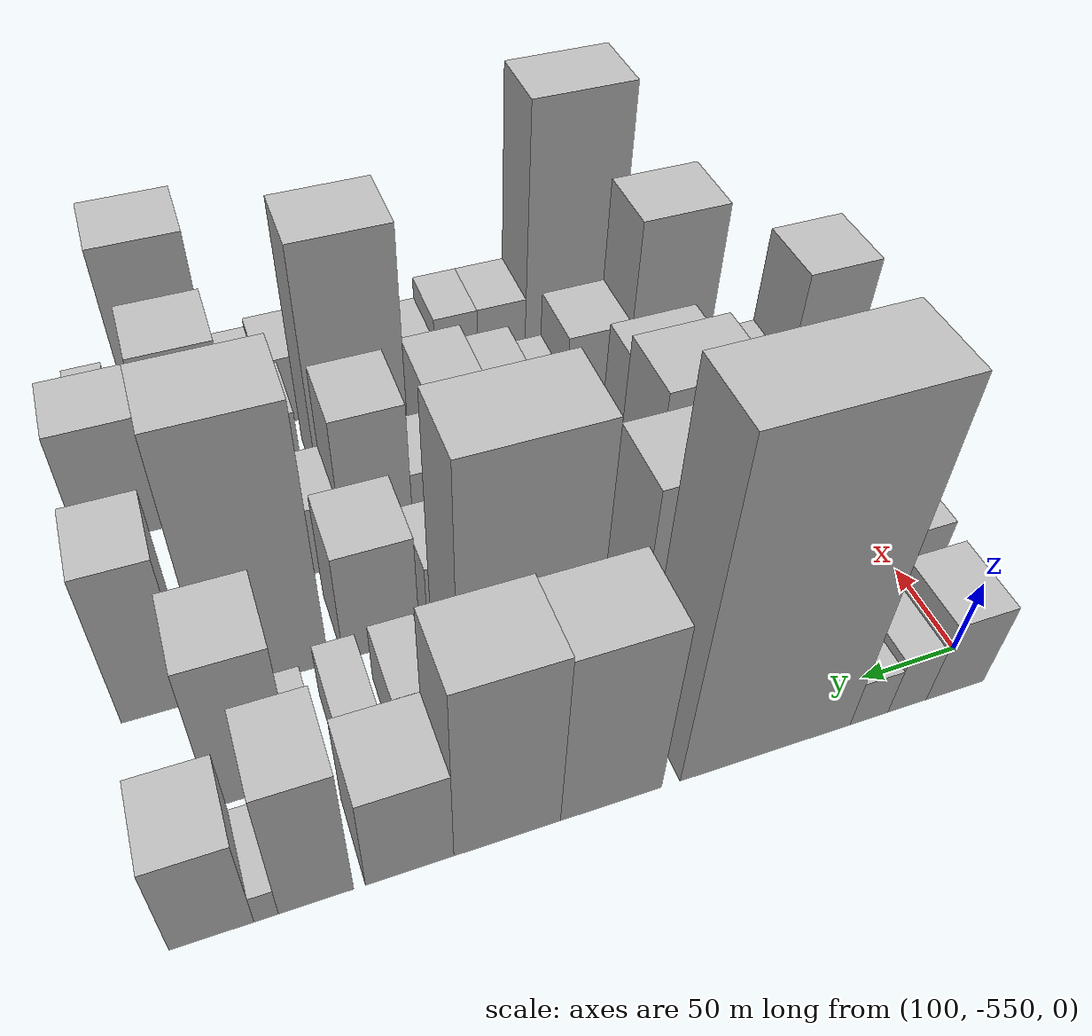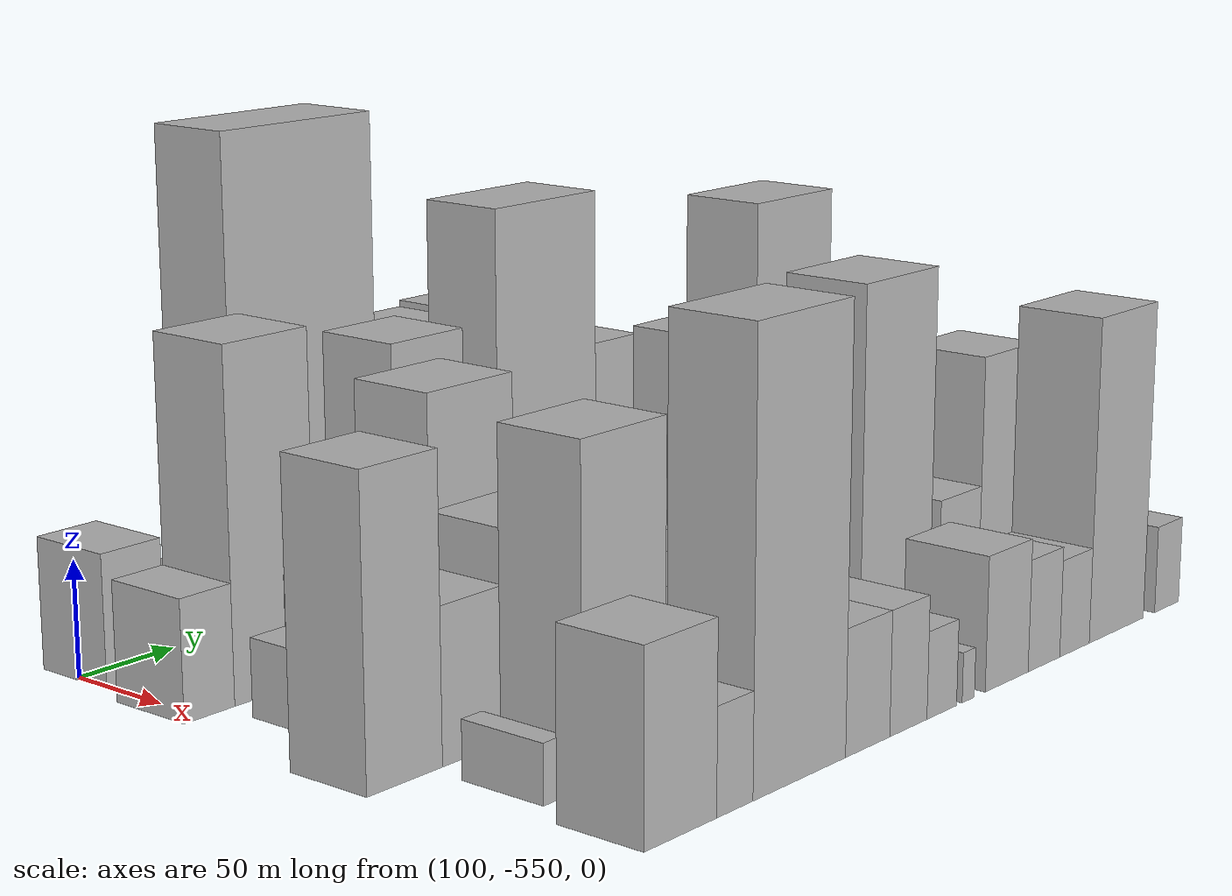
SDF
<sdf version="1.6">
 <world name="default">
  <model name="building_10">
   <static>1</static>
   <pose>100.0000 -536.9174 0 0.000000 0.000000 0.000000</pose>
   <link name="link">
    <pose>0 0 28.50 0 0 0</pose>
    <collision name="collision"><geometry><box><size>40.0000 30.9762 57.0000</size></box></geometry></collision>
    <visual name="visual">
     <cast_shadows>0</cast_shadows>
     <geometry><box><size>40.0000 30.9762 57.0000</size></box></geometry>
     <material>
      <script>
       <uri>model://HANNAS_wall/materials/scripts</uri>
       <uri>model://HANNAS_wall/materials/textures</uri>
       <name>vrc/HANNAS_wall</name>
      </script>
     </material>
    </visual>
   </link>
  </model>
  <model name="building_11">
   <static>1</static>
   <pose>100.0000 -511.2003 0 0.000000 0.000000 0.000000</pose>
   <link name="link">
    <pose>0 0 19.50 0 0 0</pose>
    <collision name="collision"><geometry><box><size>40.0000 20.4582 39.0000</size></box></geometry></collision>
    <visual name="visual">
     <cast_shadows>0</cast_shadows>
     <geometry><box><size>40.0000 20.4582 39.0000</size></box></geometry>
     <material>
      <script>
       <uri>model://HANNAS_wall/materials/scripts</uri>
       <uri>model://HANNAS_wall/materials/textures</uri>
       <name>vrc/HANNAS_wall</name>
      </script>
     </material>
    </visual>
   </link>
  </model>
  <model name="building_12">
   <static>1</static>
   <pose>100.0000 -491.1092 0 0.000000 0.000000 0.000000</pose>
   <link name="link">
    <pose>0 0 16.50 0 0 0</pose>
    <collision name="collision"><geometry><box><size>40.0000 19.7239 33.0000</size></box></geometry></collision>
    <visual name="visual">
     <cast_shadows>0</cast_shadows>
     <geometry><box><size>40.0000 19.7239 33.0000</size></box></geometry>
     <material>
      <script>
       <uri>model://HANNAS_wall/materials/scripts</uri>
       <uri>model://HANNAS_wall/materials/textures</uri>
       <name>vrc/HANNAS_wall</name>
      </script>
     </material>
    </visual>
   </link>
  </model>
  <model name="building_13">
   <static>1</static>
   <pose>100.0000 -438.6262 0 0.000000 0.000000 0.000000</pose>
   <link name="link">
    <pose>0 0 109.50 0 0 0</pose>
    <collision name="collision"><geometry><box><size>40.0000 85.2422 219.0000</size></box></geometry></collision>
    <visual name="visual">
     <cast_shadows>0</cast_shadows>
     <geometry><box><size>40.0000 85.2422 219.0000</size></box></geometry>
     <material>
      <script>
       <uri>model://HANNAS_wall/materials/scripts</uri>
       <uri>model://HANNAS_wall/materials/textures</uri>
       <name>vrc/HANNAS_wall</name>
      </script>
     </material>
    </visual>
   </link>
  </model>
  <model name="building_14">
   <static>1</static>
   <pose>100.0000 -363.2224 0 0.000000 0.000000 0.000000</pose>
   <link name="link">
    <pose>0 0 60.00 0 0 0</pose>
    <collision name="collision"><geometry><box><size>40.0000 47.5653 120.0000</size></box></geometry></collision>
    <visual name="visual">
     <cast_shadows>0</cast_shadows>
     <geometry><box><size>40.0000 47.5653 120.0000</size></box></geometry>
     <material>
      <script>
       <uri>model://HANNAS_wall/materials/scripts</uri>
       <uri>model://HANNAS_wall/materials/textures</uri>
       <name>vrc/HANNAS_wall</name>
      </script>
     </material>
    </visual>
   </link>
  </model>
  <model name="building_15">
   <static>1</static>
   <pose>100.0000 -315.4356 0 0.000000 0.000000 0.000000</pose>
   <link name="link">
    <pose>0 0 61.50 0 0 0</pose>
    <collision name="collision"><geometry><box><size>40.0000 48.0083 123.0000</size></box></geometry></collision>
    <visual name="visual">
     <cast_shadows>0</cast_shadows>
     <geometry><box><size>40.0000 48.0083 123.0000</size></box></geometry>
     <material>
      <script>
       <uri>model://HANNAS_wall/materials/scripts</uri>
       <uri>model://HANNAS_wall/materials/textures</uri>
       <name>vrc/HANNAS_wall</name>
      </script>
     </material>
    </visual>
   </link>
  </model>
  <model name="building_16">
   <static>1</static>
   <pose>100.0000 -272.2559 0 0.000000 0.000000 0.000000</pose>
   <link name="link">
    <pose>0 0 33.00 0 0 0</pose>
    <collision name="collision"><geometry><box><size>40.0000 38.3510 66.0000</size></box></geometry></collision>
    <visual name="visual">
     <cast_shadows>0</cast_shadows>
     <geometry><box><size>40.0000 38.3510 66.0000</size></box></geometry>
     <material>
      <script>
       <uri>model://HANNAS_wall/materials/scripts</uri>
       <uri>model://HANNAS_wall/materials/textures</uri>
       <name>vrc/HANNAS_wall</name>
      </script>
     </material>
    </visual>
   </link>
  </model>
  <model name="building_17">
   <static>1</static>
   <pose>100.0000 -232.3339 0 0.000000 0.000000 0.000000</pose>
   <link name="link">
    <pose>0 0 46.50 0 0 0</pose>
    <collision name="collision"><geometry><box><size>40.0000 31.4930 93.0000</size></box></geometry></collision>
    <visual name="visual">
     <cast_shadows>0</cast_shadows>
     <geometry><box><size>40.0000 31.4930 93.0000</size></box></geometry>
     <material>
      <script>
       <uri>model://HANNAS_wall/materials/scripts</uri>
       <uri>model://HANNAS_wall/materials/textures</uri>
       <name>vrc/HANNAS_wall</name>
      </script>
     </material>
    </visual>
   </link>
  </model>
  <model name="building_18">
   <static>1</static>
   <pose>100.0000 -211.5624 0 0.000000 0.000000 0.000000</pose>
   <link name="link">
    <pose>0 0 10.50 0 0 0</pose>
    <collision name="collision"><geometry><box><size>40.0000 10.0500 21.0000</size></box></geometry></collision>
    <visual name="visual">
     <cast_shadows>0</cast_shadows>
     <geometry><box><size>40.0000 10.0500 21.0000</size></box></geometry>
     <material>
      <script>
       <uri>model://HANNAS_wall/materials/scripts</uri>
       <uri>model://HANNAS_wall/materials/textures</uri>
       <name>vrc/HANNAS_wall</name>
      </script>
     </material>
    </visual>
   </link>
  </model>
  <model name="building_19">
   <static>1</static>
   <pose>100.0000 -189.4465 0 0.000000 0.000000 0.000000</pose>
   <link name="link">
    <pose>0 0 33.00 0 0 0</pose>
    <collision name="collision"><geometry><box><size>40.0000 34.1818 66.0000</size></box></geometry></collision>
    <visual name="visual">
     <cast_shadows>0</cast_shadows>
     <geometry><box><size>40.0000 34.1818 66.0000</size></box></geometry>
     <material>
      <script>
       <uri>model://HANNAS_wall/materials/scripts</uri>
       <uri>model://HANNAS_wall/materials/textures</uri>
       <name>vrc/HANNAS_wall</name>
      </script>
     </material>
    </visual>
   </link>
  </model>
  <model name="building_60">
   <static>1</static>
   <pose>155.0000 -546.4529 0 0.000000 0.000000 0.000000</pose>
   <link name="link">
    <pose>0 0 25.50 0 0 0</pose>
    <collision name="collision"><geometry><box><size>40.0000 26.4667 51.0000</size></box></geometry></collision>
    <visual name="visual">
     <cast_shadows>0</cast_shadows>
     <geometry><box><size>40.0000 26.4667 51.0000</size></box></geometry>
     <material>
      <script>
       <uri>model://HANNAS_wall/materials/scripts</uri>
       <uri>model://HANNAS_wall/materials/textures</uri>
       <name>vrc/HANNAS_wall</name>
      </script>
     </material>
    </visual>
   </link>
  </model>
  <model name="building_61">
   <static>1</static>
   <pose>155.0000 -510.8375 0 0.000000 0.000000 0.000000</pose>
   <link name="link">
    <pose>0 0 73.50 0 0 0</pose>
    <collision name="collision"><geometry><box><size>40.0000 44.7640 147.0000</size></box></geometry></collision>
    <visual name="visual">
     <cast_shadows>0</cast_shadows>
     <geometry><box><size>40.0000 44.7640 147.0000</size></box></geometry>
     <material>
      <script>
       <uri>model://HANNAS_wall/materials/scripts</uri>
       <uri>model://HANNAS_wall/materials/textures</uri>
       <name>vrc/HANNAS_wall</name>
      </script>
     </material>
    </visual>
   </link>
  </model>
  <model name="building_62">
   <static>1</static>
   <pose>155.0000 -466.9469 0 0.000000 0.000000 0.000000</pose>
   <link name="link">
    <pose>0 0 37.50 0 0 0</pose>
    <collision name="collision"><geometry><box><size>40.0000 43.0172 75.0000</size></box></geometry></collision>
    <visual name="visual">
     <cast_shadows>0</cast_shadows>
     <geometry><box><size>40.0000 43.0172 75.0000</size></box></geometry>
     <material>
      <script>
       <uri>model://HANNAS_wall/materials/scripts</uri>
       <uri>model://HANNAS_wall/materials/textures</uri>
       <name>vrc/HANNAS_wall</name>
      </script>
     </material>
    </visual>
   </link>
  </model>
  <model name="building_63">
   <static>1</static>
   <pose>155.0000 -419.9673 0 0.000000 0.000000 0.000000</pose>
   <link name="link">
    <pose>0 0 66.00 0 0 0</pose>
    <collision name="collision"><geometry><box><size>40.0000 42.9420 132.0000</size></box></geometry></collision>
    <visual name="visual">
     <cast_shadows>0</cast_shadows>
     <geometry><box><size>40.0000 42.9420 132.0000</size></box></geometry>
     <material>
      <script>
       <uri>model://HANNAS_wall/materials/scripts</uri>
       <uri>model://HANNAS_wall/materials/textures</uri>
       <name>vrc/HANNAS_wall</name>
      </script>
     </material>
    </visual>
   </link>
  </model>
  <model name="building_64">
   <static>1</static>
   <pose>155.0000 -387.9159 0 0.000000 0.000000 0.000000</pose>
   <link name="link">
    <pose>0 0 21.00 0 0 0</pose>
    <collision name="collision"><geometry><box><size>40.0000 21.1607 42.0000</size></box></geometry></collision>
    <visual name="visual">
     <cast_shadows>0</cast_shadows>
     <geometry><box><size>40.0000 21.1607 42.0000</size></box></geometry>
     <material>
      <script>
       <uri>model://HANNAS_wall/materials/scripts</uri>
       <uri>model://HANNAS_wall/materials/textures</uri>
       <name>vrc/HANNAS_wall</name>
      </script>
     </material>
    </visual>
   </link>
  </model>
  <model name="building_65">
   <static>1</static>
   <pose>155.0000 -344.6636 0 0.000000 0.000000 0.000000</pose>
   <link name="link">
    <pose>0 0 90.00 0 0 0</pose>
    <collision name="collision"><geometry><box><size>40.0000 65.3439 180.0000</size></box></geometry></collision>
    <visual name="visual">
     <cast_shadows>0</cast_shadows>
     <geometry><box><size>40.0000 65.3439 180.0000</size></box></geometry>
     <material>
      <script>
       <uri>model://HANNAS_wall/materials/scripts</uri>
       <uri>model://HANNAS_wall/materials/textures</uri>
       <name>vrc/HANNAS_wall</name>
      </script>
     </material>
    </visual>
   </link>
  </model>
  <model name="building_66">
   <static>1</static>
   <pose>155.0000 -293.2147 0 0.000000 0.000000 0.000000</pose>
   <link name="link">
    <pose>0 0 21.00 0 0 0</pose>
    <collision name="collision"><geometry><box><size>40.0000 21.5539 42.0000</size></box></geometry></collision>
    <visual name="visual">
     <cast_shadows>0</cast_shadows>
     <geometry><box><size>40.0000 21.5539 42.0000</size></box></geometry>
     <material>
      <script>
       <uri>model://HANNAS_wall/materials/scripts</uri>
       <uri>model://HANNAS_wall/materials/textures</uri>
       <name>vrc/HANNAS_wall</name>
      </script>
     </material>
    </visual>
   </link>
  </model>
  <model name="building_67">
   <static>1</static>
   <pose>155.0000 -266.6001 0 0.000000 0.000000 0.000000</pose>
   <link name="link">
    <pose>0 0 19.50 0 0 0</pose>
    <collision name="collision"><geometry><box><size>40.0000 19.6755 39.0000</size></box></geometry></collision>
    <visual name="visual">
     <cast_shadows>0</cast_shadows>
     <geometry><box><size>40.0000 19.6755 39.0000</size></box></geometry>
     <material>
      <script>
       <uri>model://HANNAS_wall/materials/scripts</uri>
       <uri>model://HANNAS_wall/materials/textures</uri>
       <name>vrc/HANNAS_wall</name>
      </script>
     </material>
    </visual>
   </link>
  </model>
  <model name="building_68">
   <static>1</static>
   <pose>155.0000 -243.4359 0 0.000000 0.000000 0.000000</pose>
   <link name="link">
    <pose>0 0 13.50 0 0 0</pose>
    <collision name="collision"><geometry><box><size>40.0000 12.6530 27.0000</size></box></geometry></collision>
    <visual name="visual">
     <cast_shadows>0</cast_shadows>
     <geometry><box><size>40.0000 12.6530 27.0000</size></box></geometry>
     <material>
      <script>
       <uri>model://HANNAS_wall/materials/scripts</uri>
       <uri>model://HANNAS_wall/materials/textures</uri>
       <name>vrc/HANNAS_wall</name>
      </script>
     </material>
    </visual>
   </link>
  </model>
  <model name="building_69">
   <static>1</static>
   <pose>155.0000 -218.3014 0 0.000000 0.000000 0.000000</pose>
   <link name="link">
    <pose>0 0 51.00 0 0 0</pose>
    <collision name="collision"><geometry><box><size>40.0000 37.6159 102.0000</size></box></geometry></collision>
    <visual name="visual">
     <cast_shadows>0</cast_shadows>
     <geometry><box><size>40.0000 37.6159 102.0000</size></box></geometry>
     <material>
      <script>
       <uri>model://HANNAS_wall/materials/scripts</uri>
       <uri>model://HANNAS_wall/materials/textures</uri>
       <name>vrc/HANNAS_wall</name>
      </script>
     </material>
    </visual>
   </link>
  </model>
  <model name="building_111">
   <static>1</static>
   <pose>210.0000 -528.1250 0 0.000000 0.000000 0.000000</pose>
   <link name="link">
    <pose>0 0 16.50 0 0 0</pose>
    <collision name="collision"><geometry><box><size>40.0000 18.6933 33.0000</size></box></geometry></collision>
    <visual name="visual">
     <cast_shadows>0</cast_shadows>
     <geometry><box><size>40.0000 18.6933 33.0000</size></box></geometry>
     <material>
      <script>
       <uri>model://HANNAS_wall/materials/scripts</uri>
       <uri>model://HANNAS_wall/materials/textures</uri>
       <name>vrc/HANNAS_wall</name>
      </script>
     </material>
    </visual>
   </link>
  </model>
  <model name="building_112">
   <static>1</static>
   <pose>210.0000 -504.7287 0 0.000000 0.000000 0.000000</pose>
   <link name="link">
    <pose>0 0 27.00 0 0 0</pose>
    <collision name="collision"><geometry><box><size>40.0000 28.0993 54.0000</size></box></geometry></collision>
    <visual name="visual">
     <cast_shadows>0</cast_shadows>
     <geometry><box><size>40.0000 28.0993 54.0000</size></box></geometry>
     <material>
      <script>
       <uri>model://HANNAS_wall/materials/scripts</uri>
       <uri>model://HANNAS_wall/materials/textures</uri>
       <name>vrc/HANNAS_wall</name>
      </script>
     </material>
    </visual>
   </link>
  </model>
  <model name="building_113">
   <static>1</static>
   <pose>210.0000 -482.1570 0 0.000000 0.000000 0.000000</pose>
   <link name="link">
    <pose>0 0 10.50 0 0 0</pose>
    <collision name="collision"><geometry><box><size>40.0000 9.0439 21.0000</size></box></geometry></collision>
    <visual name="visual">
     <cast_shadows>0</cast_shadows>
     <geometry><box><size>40.0000 9.0439 21.0000</size></box></geometry>
     <material>
      <script>
       <uri>model://HANNAS_wall/materials/scripts</uri>
       <uri>model://HANNAS_wall/materials/textures</uri>
       <name>vrc/HANNAS_wall</name>
      </script>
     </material>
    </visual>
   </link>
  </model>
  <model name="building_114">
   <static>1</static>
   <pose>210.0000 -452.8979 0 0.000000 0.000000 0.000000</pose>
   <link name="link">
    <pose>0 0 63.00 0 0 0</pose>
    <collision name="collision"><geometry><box><size>40.0000 49.4742 126.0000</size></box></geometry></collision>
    <visual name="visual">
     <cast_shadows>0</cast_shadows>
     <geometry><box><size>40.0000 49.4742 126.0000</size></box></geometry>
     <material>
      <script>
       <uri>model://HANNAS_wall/materials/scripts</uri>
       <uri>model://HANNAS_wall/materials/textures</uri>
       <name>vrc/HANNAS_wall</name>
      </script>
     </material>
    </visual>
   </link>
  </model>
  <model name="building_115">
   <static>1</static>
   <pose>210.0000 -404.6785 0 0.000000 0.000000 0.000000</pose>
   <link name="link">
    <pose>0 0 33.00 0 0 0</pose>
    <collision name="collision"><geometry><box><size>40.0000 36.9648 66.0000</size></box></geometry></collision>
    <visual name="visual">
     <cast_shadows>0</cast_shadows>
     <geometry><box><size>40.0000 36.9648 66.0000</size></box></geometry>
     <material>
      <script>
       <uri>model://HANNAS_wall/materials/scripts</uri>
       <uri>model://HANNAS_wall/materials/textures</uri>
       <name>vrc/HANNAS_wall</name>
      </script>
     </material>
    </visual>
   </link>
  </model>
  <model name="building_116">
   <static>1</static>
   <pose>210.0000 -361.6342 0 0.000000 0.000000 0.000000</pose>
   <link name="link">
    <pose>0 0 40.50 0 0 0</pose>
    <collision name="collision"><geometry><box><size>40.0000 41.1238 81.0000</size></box></geometry></collision>
    <visual name="visual">
     <cast_shadows>0</cast_shadows>
     <geometry><box><size>40.0000 41.1238 81.0000</size></box></geometry>
     <material>
      <script>
       <uri>model://HANNAS_wall/materials/scripts</uri>
       <uri>model://HANNAS_wall/materials/textures</uri>
       <name>vrc/HANNAS_wall</name>
      </script>
     </material>
    </visual>
   </link>
  </model>
  <model name="building_117">
   <static>1</static>
   <pose>210.0000 -327.6168 0 0.000000 0.000000 0.000000</pose>
   <link name="link">
    <pose>0 0 25.50 0 0 0</pose>
    <collision name="collision"><geometry><box><size>40.0000 26.9108 51.0000</size></box></geometry></collision>
    <visual name="visual">
     <cast_shadows>0</cast_shadows>
     <geometry><box><size>40.0000 26.9108 51.0000</size></box></geometry>
     <material>
      <script>
       <uri>model://HANNAS_wall/materials/scripts</uri>
       <uri>model://HANNAS_wall/materials/textures</uri>
       <name>vrc/HANNAS_wall</name>
      </script>
     </material>
    </visual>
   </link>
  </model>
  <model name="building_118">
   <static>1</static>
   <pose>210.0000 -291.1790 0 0.000000 0.000000 0.000000</pose>
   <link name="link">
    <pose>0 0 37.50 0 0 0</pose>
    <collision name="collision"><geometry><box><size>40.0000 37.9648 75.0000</size></box></geometry></collision>
    <visual name="visual">
     <cast_shadows>0</cast_shadows>
     <geometry><box><size>40.0000 37.9648 75.0000</size></box></geometry>
     <material>
      <script>
       <uri>model://HANNAS_wall/materials/scripts</uri>
       <uri>model://HANNAS_wall/materials/textures</uri>
       <name>vrc/HANNAS_wall</name>
      </script>
     </material>
    </visual>
   </link>
  </model>
  <model name="building_119">
   <static>1</static>
   <pose>210.0000 -237.3289 0 0.000000 0.000000 0.000000</pose>
   <link name="link">
    <pose>0 0 87.00 0 0 0</pose>
    <collision name="collision"><geometry><box><size>40.0000 55.7355 174.0000</size></box></geometry></collision>
    <visual name="visual">
     <cast_shadows>0</cast_shadows>
     <geometry><box><size>40.0000 55.7355 174.0000</size></box></geometry>
     <material>
      <script>
       <uri>model://HANNAS_wall/materials/scripts</uri>
       <uri>model://HANNAS_wall/materials/textures</uri>
       <name>vrc/HANNAS_wall</name>
      </script>
     </material>
    </visual>
   </link>
  </model>
  <model name="building_120">
   <static>1</static>
   <pose>210.0000 -184.7166 0 0.000000 0.000000 0.000000</pose>
   <link name="link">
    <pose>0 0 52.50 0 0 0</pose>
    <collision name="collision"><geometry><box><size>40.0000 33.4890 105.0000</size></box></geometry></collision>
    <visual name="visual">
     <cast_shadows>0</cast_shadows>
     <geometry><box><size>40.0000 33.4890 105.0000</size></box></geometry>
     <material>
      <script>
       <uri>model://HANNAS_wall/materials/scripts</uri>
       <uri>model://HANNAS_wall/materials/textures</uri>
       <name>vrc/HANNAS_wall</name>
      </script>
     </material>
    </visual>
   </link>
  </model>
  <model name="building_163">
   <static>1</static>
   <pose>265.0000 -549.4893 0 0.000000 0.000000 0.000000</pose>
   <link name="link">
    <pose>0 0 61.50 0 0 0</pose>
    <collision name="collision"><geometry><box><size>40.0000 39.9293 123.0000</size></box></geometry></collision>
    <visual name="visual">
     <cast_shadows>0</cast_shadows>
     <geometry><box><size>40.0000 39.9293 123.0000</size></box></geometry>
     <material>
      <script>
       <uri>model://HANNAS_wall/materials/scripts</uri>
       <uri>model://HANNAS_wall/materials/textures</uri>
       <name>vrc/HANNAS_wall</name>
      </script>
     </material>
    </visual>
   </link>
  </model>
  <model name="building_164">
   <static>1</static>
   <pose>265.0000 -512.4568 0 0.000000 0.000000 0.000000</pose>
   <link name="link">
    <pose>0 0 31.50 0 0 0</pose>
    <collision name="collision"><geometry><box><size>40.0000 34.1358 63.0000</size></box></geometry></collision>
    <visual name="visual">
     <cast_shadows>0</cast_shadows>
     <geometry><box><size>40.0000 34.1358 63.0000</size></box></geometry>
     <material>
      <script>
       <uri>model://HANNAS_wall/materials/scripts</uri>
       <uri>model://HANNAS_wall/materials/textures</uri>
       <name>vrc/HANNAS_wall</name>
      </script>
     </material>
    </visual>
   </link>
  </model>
  <model name="building_165">
   <static>1</static>
   <pose>265.0000 -468.3640 0 0.000000 0.000000 0.000000</pose>
   <link name="link">
    <pose>0 0 42.00 0 0 0</pose>
    <collision name="collision"><geometry><box><size>40.0000 48.0498 84.0000</size></box></geometry></collision>
    <visual name="visual">
     <cast_shadows>0</cast_shadows>
     <geometry><box><size>40.0000 48.0498 84.0000</size></box></geometry>
     <material>
      <script>
       <uri>model://HANNAS_wall/materials/scripts</uri>
       <uri>model://HANNAS_wall/materials/textures</uri>
       <name>vrc/HANNAS_wall</name>
      </script>
     </material>
    </visual>
   </link>
  </model>
  <model name="building_166">
   <static>1</static>
   <pose>265.0000 -435.1723 0 0.000000 0.000000 0.000000</pose>
   <link name="link">
    <pose>0 0 16.50 0 0 0</pose>
    <collision name="collision"><geometry><box><size>40.0000 18.3336 33.0000</size></box></geometry></collision>
    <visual name="visual">
     <cast_shadows>0</cast_shadows>
     <geometry><box><size>40.0000 18.3336 33.0000</size></box></geometry>
     <material>
      <script>
       <uri>model://HANNAS_wall/materials/scripts</uri>
       <uri>model://HANNAS_wall/materials/textures</uri>
       <name>vrc/HANNAS_wall</name>
      </script>
     </material>
    </visual>
   </link>
  </model>
  <model name="building_167">
   <static>1</static>
   <pose>265.0000 -407.9453 0 0.000000 0.000000 0.000000</pose>
   <link name="link">
    <pose>0 0 31.50 0 0 0</pose>
    <collision name="collision"><geometry><box><size>40.0000 36.1204 63.0000</size></box></geometry></collision>
    <visual name="visual">
     <cast_shadows>0</cast_shadows>
     <geometry><box><size>40.0000 36.1204 63.0000</size></box></geometry>
     <material>
      <script>
       <uri>model://HANNAS_wall/materials/scripts</uri>
       <uri>model://HANNAS_wall/materials/textures</uri>
       <name>vrc/HANNAS_wall</name>
      </script>
     </material>
    </visual>
   </link>
  </model>
  <model name="building_168">
   <static>1</static>
   <pose>265.0000 -370.6185 0 0.000000 0.000000 0.000000</pose>
   <link name="link">
    <pose>0 0 34.50 0 0 0</pose>
    <collision name="collision"><geometry><box><size>40.0000 38.5332 69.0000</size></box></geometry></collision>
    <visual name="visual">
     <cast_shadows>0</cast_shadows>
     <geometry><box><size>40.0000 38.5332 69.0000</size></box></geometry>
     <material>
      <script>
       <uri>model://HANNAS_wall/materials/scripts</uri>
       <uri>model://HANNAS_wall/materials/textures</uri>
       <name>vrc/HANNAS_wall</name>
      </script>
     </material>
    </visual>
   </link>
  </model>
  <model name="building_169">
   <static>1</static>
   <pose>265.0000 -337.6961 0 0.000000 0.000000 0.000000</pose>
   <link name="link">
    <pose>0 0 27.00 0 0 0</pose>
    <collision name="collision"><geometry><box><size>40.0000 27.3116 54.0000</size></box></geometry></collision>
    <visual name="visual">
     <cast_shadows>0</cast_shadows>
     <geometry><box><size>40.0000 27.3116 54.0000</size></box></geometry>
     <material>
      <script>
       <uri>model://HANNAS_wall/materials/scripts</uri>
       <uri>model://HANNAS_wall/materials/textures</uri>
       <name>vrc/HANNAS_wall</name>
      </script>
     </material>
    </visual>
   </link>
  </model>
  <model name="building_170">
   <static>1</static>
   <pose>265.0000 -305.6561 0 0.000000 0.000000 0.000000</pose>
   <link name="link">
    <pose>0 0 51.00 0 0 0</pose>
    <collision name="collision"><geometry><box><size>40.0000 36.7684 102.0000</size></box></geometry></collision>
    <visual name="visual">
     <cast_shadows>0</cast_shadows>
     <geometry><box><size>40.0000 36.7684 102.0000</size></box></geometry>
     <material>
      <script>
       <uri>model://HANNAS_wall/materials/scripts</uri>
       <uri>model://HANNAS_wall/materials/textures</uri>
       <name>vrc/HANNAS_wall</name>
      </script>
     </material>
    </visual>
   </link>
  </model>
  <model name="building_171">
   <static>1</static>
   <pose>265.0000 -273.3332 0 0.000000 0.000000 0.000000</pose>
   <link name="link">
    <pose>0 0 24.00 0 0 0</pose>
    <collision name="collision"><geometry><box><size>40.0000 27.8774 48.0000</size></box></geometry></collision>
    <visual name="visual">
     <cast_shadows>0</cast_shadows>
     <geometry><box><size>40.0000 27.8774 48.0000</size></box></geometry>
     <material>
      <script>
       <uri>model://HANNAS_wall/materials/scripts</uri>
       <uri>model://HANNAS_wall/materials/textures</uri>
       <name>vrc/HANNAS_wall</name>
      </script>
     </material>
    </visual>
   </link>
  </model>
  <model name="building_172">
   <static>1</static>
   <pose>265.0000 -234.2094 0 0.000000 0.000000 0.000000</pose>
   <link name="link">
    <pose>0 0 37.50 0 0 0</pose>
    <collision name="collision"><geometry><box><size>40.0000 42.3704 75.0000</size></box></geometry></collision>
    <visual name="visual">
     <cast_shadows>0</cast_shadows>
     <geometry><box><size>40.0000 42.3704 75.0000</size></box></geometry>
     <material>
      <script>
       <uri>model://HANNAS_wall/materials/scripts</uri>
       <uri>model://HANNAS_wall/materials/textures</uri>
       <name>vrc/HANNAS_wall</name>
      </script>
     </material>
    </visual>
   </link>
  </model>
  <model name="building_217">
   <static>1</static>
   <pose>320.0000 -529.2027 0 0.000000 0.000000 0.000000</pose>
   <link name="link">
    <pose>0 0 12.00 0 0 0</pose>
    <collision name="collision"><geometry><box><size>40.0000 11.2397 24.0000</size></box></geometry></collision>
    <visual name="visual">
     <cast_shadows>0</cast_shadows>
     <geometry><box><size>40.0000 11.2397 24.0000</size></box></geometry>
     <material>
      <script>
       <uri>model://HANNAS_wall/materials/scripts</uri>
       <uri>model://HANNAS_wall/materials/textures</uri>
       <name>vrc/HANNAS_wall</name>
      </script>
     </material>
    </visual>
   </link>
  </model>
  <model name="building_218">
   <static>1</static>
   <pose>320.0000 -489.3328 0 0.000000 0.000000 0.000000</pose>
   <link name="link">
    <pose>0 0 66.00 0 0 0</pose>
    <collision name="collision"><geometry><box><size>40.0000 48.5002 132.0000</size></box></geometry></collision>
    <visual name="visual">
     <cast_shadows>0</cast_shadows>
     <geometry><box><size>40.0000 48.5002 132.0000</size></box></geometry>
     <material>
      <script>
       <uri>model://HANNAS_wall/materials/scripts</uri>
       <uri>model://HANNAS_wall/materials/textures</uri>
       <name>vrc/HANNAS_wall</name>
      </script>
     </material>
    </visual>
   </link>
  </model>
  <model name="building_219">
   <static>1</static>
   <pose>320.0000 -446.9480 0 0.000000 0.000000 0.000000</pose>
   <link name="link">
    <pose>0 0 33.00 0 0 0</pose>
    <collision name="collision"><geometry><box><size>40.0000 36.2692 66.0000</size></box></geometry></collision>
    <visual name="visual">
     <cast_shadows>0</cast_shadows>
     <geometry><box><size>40.0000 36.2692 66.0000</size></box></geometry>
     <material>
      <script>
       <uri>model://HANNAS_wall/materials/scripts</uri>
       <uri>model://HANNAS_wall/materials/textures</uri>
       <name>vrc/HANNAS_wall</name>
      </script>
     </material>
    </visual>
   </link>
  </model>
  <model name="building_220">
   <static>1</static>
   <pose>320.0000 -418.8469 0 0.000000 0.000000 0.000000</pose>
   <link name="link">
    <pose>0 0 18.00 0 0 0</pose>
    <collision name="collision"><geometry><box><size>40.0000 19.9330 36.0000</size></box></geometry></collision>
    <visual name="visual">
     <cast_shadows>0</cast_shadows>
     <geometry><box><size>40.0000 19.9330 36.0000</size></box></geometry>
     <material>
      <script>
       <uri>model://HANNAS_wall/materials/scripts</uri>
       <uri>model://HANNAS_wall/materials/textures</uri>
       <name>vrc/HANNAS_wall</name>
      </script>
     </material>
    </visual>
   </link>
  </model>
  <model name="building_221">
   <static>1</static>
   <pose>320.0000 -394.7665 0 0.000000 0.000000 0.000000</pose>
   <link name="link">
    <pose>0 0 24.00 0 0 0</pose>
    <collision name="collision"><geometry><box><size>40.0000 28.2277 48.0000</size></box></geometry></collision>
    <visual name="visual">
     <cast_shadows>0</cast_shadows>
     <geometry><box><size>40.0000 28.2277 48.0000</size></box></geometry>
     <material>
      <script>
       <uri>model://HANNAS_wall/materials/scripts</uri>
       <uri>model://HANNAS_wall/materials/textures</uri>
       <name>vrc/HANNAS_wall</name>
      </script>
     </material>
    </visual>
   </link>
  </model>
  <model name="building_222">
   <static>1</static>
   <pose>320.0000 -363.8823 0 0.000000 0.000000 0.000000</pose>
   <link name="link">
    <pose>0 0 28.50 0 0 0</pose>
    <collision name="collision"><geometry><box><size>40.0000 33.5409 57.0000</size></box></geometry></collision>
    <visual name="visual">
     <cast_shadows>0</cast_shadows>
     <geometry><box><size>40.0000 33.5409 57.0000</size></box></geometry>
     <material>
      <script>
       <uri>model://HANNAS_wall/materials/scripts</uri>
       <uri>model://HANNAS_wall/materials/textures</uri>
       <name>vrc/HANNAS_wall</name>
      </script>
     </material>
    </visual>
   </link>
  </model>
  <model name="building_223">
   <static>1</static>
   <pose>320.0000 -312.4970 0 0.000000 0.000000 0.000000</pose>
   <link name="link">
    <pose>0 0 81.00 0 0 0</pose>
    <collision name="collision"><geometry><box><size>40.0000 51.2297 162.0000</size></box></geometry></collision>
    <visual name="visual">
     <cast_shadows>0</cast_shadows>
     <geometry><box><size>40.0000 51.2297 162.0000</size></box></geometry>
     <material>
      <script>
       <uri>model://HANNAS_wall/materials/scripts</uri>
       <uri>model://HANNAS_wall/materials/textures</uri>
       <name>vrc/HANNAS_wall</name>
      </script>
     </material>
    </visual>
   </link>
  </model>
  <model name="building_224">
   <static>1</static>
   <pose>320.0000 -264.2166 0 0.000000 0.000000 0.000000</pose>
   <link name="link">
    <pose>0 0 30.00 0 0 0</pose>
    <collision name="collision"><geometry><box><size>40.0000 31.3311 60.0000</size></box></geometry></collision>
    <visual name="visual">
     <cast_shadows>0</cast_shadows>
     <geometry><box><size>40.0000 31.3311 60.0000</size></box></geometry>
     <material>
      <script>
       <uri>model://HANNAS_wall/materials/scripts</uri>
       <uri>model://HANNAS_wall/materials/textures</uri>
       <name>vrc/HANNAS_wall</name>
      </script>
     </material>
    </visual>
   </link>
  </model>
  <model name="building_225">
   <static>1</static>
   <pose>320.0000 -228.0271 0 0.000000 0.000000 0.000000</pose>
   <link name="link">
    <pose>0 0 58.50 0 0 0</pose>
    <collision name="collision"><geometry><box><size>40.0000 41.0480 117.0000</size></box></geometry></collision>
    <visual name="visual">
     <cast_shadows>0</cast_shadows>
     <geometry><box><size>40.0000 41.0480 117.0000</size></box></geometry>
     <material>
      <script>
       <uri>model://HANNAS_wall/materials/scripts</uri>
       <uri>model://HANNAS_wall/materials/textures</uri>
       <name>vrc/HANNAS_wall</name>
      </script>
     </material>
    </visual>
   </link>
  </model>
  <model name="building_226">
   <static>1</static>
   <pose>320.0000 -184.4851 0 0.000000 0.000000 0.000000</pose>
   <link name="link">
    <pose>0 0 40.50 0 0 0</pose>
    <collision name="collision"><geometry><box><size>40.0000 46.0360 81.0000</size></box></geometry></collision>
    <visual name="visual">
     <cast_shadows>0</cast_shadows>
     <geometry><box><size>40.0000 46.0360 81.0000</size></box></geometry>
     <material>
      <script>
       <uri>model://HANNAS_wall/materials/scripts</uri>
       <uri>model://HANNAS_wall/materials/textures</uri>
       <name>vrc/HANNAS_wall</name>
      </script>
     </material>
    </visual>
   </link>
  </model>
  <model name="building_265">
   <static>1</static>
   <pose>375.0000 -524.4451 0 0.000000 0.000000 0.000000</pose>
   <link name="link">
    <pose>0 0 37.50 0 0 0</pose>
    <collision name="collision"><geometry><box><size>40.0000 40.7006 75.0000</size></box></geometry></collision>
    <visual name="visual">
     <cast_shadows>0</cast_shadows>
     <geometry><box><size>40.0000 40.7006 75.0000</size></box></geometry>
     <material>
      <script>
       <uri>model://HANNAS_wall/materials/scripts</uri>
       <uri>model://HANNAS_wall/materials/textures</uri>
       <name>vrc/HANNAS_wall</name>
      </script>
     </material>
    </visual>
   </link>
  </model>
  <model name="building_266">
   <static>1</static>
   <pose>375.0000 -493.4661 0 0.000000 0.000000 0.000000</pose>
   <link name="link">
    <pose>0 0 21.00 0 0 0</pose>
    <collision name="collision"><geometry><box><size>40.0000 21.2575 42.0000</size></box></geometry></collision>
    <visual name="visual">
     <cast_shadows>0</cast_shadows>
     <geometry><box><size>40.0000 21.2575 42.0000</size></box></geometry>
     <material>
      <script>
       <uri>model://HANNAS_wall/materials/scripts</uri>
       <uri>model://HANNAS_wall/materials/textures</uri>
       <name>vrc/HANNAS_wall</name>
      </script>
     </material>
    </visual>
   </link>
  </model>
  <model name="building_267">
   <static>1</static>
   <pose>375.0000 -454.0231 0 0.000000 0.000000 0.000000</pose>
   <link name="link">
    <pose>0 0 88.50 0 0 0</pose>
    <collision name="collision"><geometry><box><size>40.0000 57.6286 177.0000</size></box></geometry></collision>
    <visual name="visual">
     <cast_shadows>0</cast_shadows>
     <geometry><box><size>40.0000 57.6286 177.0000</size></box></geometry>
     <material>
      <script>
       <uri>model://HANNAS_wall/materials/scripts</uri>
       <uri>model://HANNAS_wall/materials/textures</uri>
       <name>vrc/HANNAS_wall</name>
      </script>
     </material>
    </visual>
   </link>
  </model>
  <model name="building_268">
   <static>1</static>
   <pose>375.0000 -410.5687 0 0.000000 0.000000 0.000000</pose>
   <link name="link">
    <pose>0 0 25.50 0 0 0</pose>
    <collision name="collision"><geometry><box><size>40.0000 29.2801 51.0000</size></box></geometry></collision>
    <visual name="visual">
     <cast_shadows>0</cast_shadows>
     <geometry><box><size>40.0000 29.2801 51.0000</size></box></geometry>
     <material>
      <script>
       <uri>model://HANNAS_wall/materials/scripts</uri>
       <uri>model://HANNAS_wall/materials/textures</uri>
       <name>vrc/HANNAS_wall</name>
      </script>
     </material>
    </visual>
   </link>
  </model>
  <model name="building_269">
   <static>1</static>
   <pose>375.0000 -383.1464 0 0.000000 0.000000 0.000000</pose>
   <link name="link">
    <pose>0 0 25.50 0 0 0</pose>
    <collision name="collision"><geometry><box><size>40.0000 25.5647 51.0000</size></box></geometry></collision>
    <visual name="visual">
     <cast_shadows>0</cast_shadows>
     <geometry><box><size>40.0000 25.5647 51.0000</size></box></geometry>
     <material>
      <script>
       <uri>model://HANNAS_wall/materials/scripts</uri>
       <uri>model://HANNAS_wall/materials/textures</uri>
       <name>vrc/HANNAS_wall</name>
      </script>
     </material>
    </visual>
   </link>
  </model>
  <model name="building_270">
   <static>1</static>
   <pose>375.0000 -359.8195 0 0.000000 0.000000 0.000000</pose>
   <link name="link">
    <pose>0 0 18.00 0 0 0</pose>
    <collision name="collision"><geometry><box><size>40.0000 21.0891 36.0000</size></box></geometry></collision>
    <visual name="visual">
     <cast_shadows>0</cast_shadows>
     <geometry><box><size>40.0000 21.0891 36.0000</size></box></geometry>
     <material>
      <script>
       <uri>model://HANNAS_wall/materials/scripts</uri>
       <uri>model://HANNAS_wall/materials/textures</uri>
       <name>vrc/HANNAS_wall</name>
      </script>
     </material>
    </visual>
   </link>
  </model>
  <model name="building_271">
   <static>1</static>
   <pose>375.0000 -340.8096 0 0.000000 0.000000 0.000000</pose>
   <link name="link">
    <pose>0 0 10.50 0 0 0</pose>
    <collision name="collision"><geometry><box><size>40.0000 8.9308 21.0000</size></box></geometry></collision>
    <visual name="visual">
     <cast_shadows>0</cast_shadows>
     <geometry><box><size>40.0000 8.9308 21.0000</size></box></geometry>
     <material>
      <script>
       <uri>model://HANNAS_wall/materials/scripts</uri>
       <uri>model://HANNAS_wall/materials/textures</uri>
       <name>vrc/HANNAS_wall</name>
      </script>
     </material>
    </visual>
   </link>
  </model>
  <model name="building_272">
   <static>1</static>
   <pose>375.0000 -312.0801 0 0.000000 0.000000 0.000000</pose>
   <link name="link">
    <pose>0 0 28.50 0 0 0</pose>
    <collision name="collision"><geometry><box><size>40.0000 32.5281 57.0000</size></box></geometry></collision>
    <visual name="visual">
     <cast_shadows>0</cast_shadows>
     <geometry><box><size>40.0000 32.5281 57.0000</size></box></geometry>
     <material>
      <script>
       <uri>model://HANNAS_wall/materials/scripts</uri>
       <uri>model://HANNAS_wall/materials/textures</uri>
       <name>vrc/HANNAS_wall</name>
      </script>
     </material>
    </visual>
   </link>
  </model>
  <model name="building_273">
   <static>1</static>
   <pose>375.0000 -283.3825 0 0.000000 0.000000 0.000000</pose>
   <link name="link">
    <pose>0 0 24.00 0 0 0</pose>
    <collision name="collision"><geometry><box><size>40.0000 24.8672 48.0000</size></box></geometry></collision>
    <visual name="visual">
     <cast_shadows>0</cast_shadows>
     <geometry><box><size>40.0000 24.8672 48.0000</size></box></geometry>
     <material>
      <script>
       <uri>model://HANNAS_wall/materials/scripts</uri>
       <uri>model://HANNAS_wall/materials/textures</uri>
       <name>vrc/HANNAS_wall</name>
      </script>
     </material>
    </visual>
   </link>
  </model>
  <model name="building_274">
   <static>1</static>
   <pose>375.0000 -258.9448 0 0.000000 0.000000 0.000000</pose>
   <link name="link">
    <pose>0 0 21.00 0 0 0</pose>
    <collision name="collision"><geometry><box><size>40.0000 24.0082 42.0000</size></box></geometry></collision>
    <visual name="visual">
     <cast_shadows>0</cast_shadows>
     <geometry><box><size>40.0000 24.0082 42.0000</size></box></geometry>
     <material>
      <script>
       <uri>model://HANNAS_wall/materials/scripts</uri>
       <uri>model://HANNAS_wall/materials/textures</uri>
       <name>vrc/HANNAS_wall</name>
      </script>
     </material>
    </visual>
   </link>
  </model>
  <model name="building_275">
   <static>1</static>
   <pose>375.0000 -223.9881 0 0.000000 0.000000 0.000000</pose>
   <link name="link">
    <pose>0 0 70.50 0 0 0</pose>
    <collision name="collision"><geometry><box><size>40.0000 45.9052 141.0000</size></box></geometry></collision>
    <visual name="visual">
     <cast_shadows>0</cast_shadows>
     <geometry><box><size>40.0000 45.9052 141.0000</size></box></geometry>
     <material>
      <script>
       <uri>model://HANNAS_wall/materials/scripts</uri>
       <uri>model://HANNAS_wall/materials/textures</uri>
       <name>vrc/HANNAS_wall</name>
      </script>
     </material>
    </visual>
   </link>
  </model>
  <model name="building_276">
   <static>1</static>
   <pose>375.0000 -180.3613 0 0.000000 0.000000 0.000000</pose>
   <link name="link">
    <pose>0 0 19.50 0 0 0</pose>
    <collision name="collision"><geometry><box><size>40.0000 21.3482 39.0000</size></box></geometry></collision>
    <visual name="visual">
     <cast_shadows>0</cast_shadows>
     <geometry><box><size>40.0000 21.3482 39.0000</size></box></geometry>
     <material>
      <script>
       <uri>model://HANNAS_wall/materials/scripts</uri>
       <uri>model://HANNAS_wall/materials/textures</uri>
       <name>vrc/HANNAS_wall</name>
      </script>
     </material>
    </visual>
   </link>
  </model>
 </world>
</sdf>
